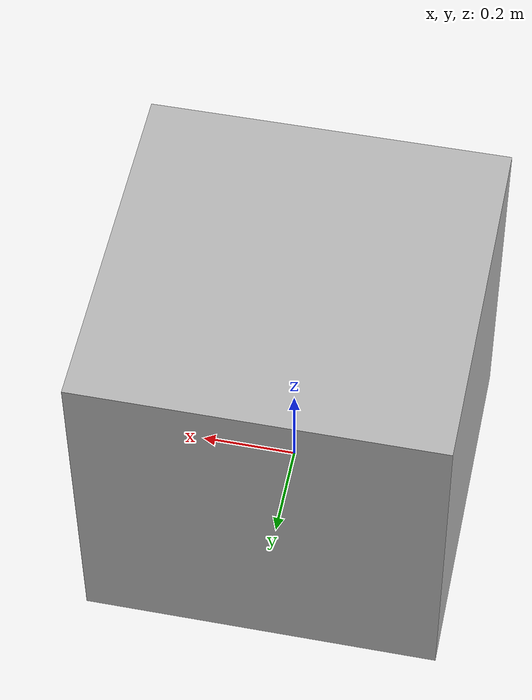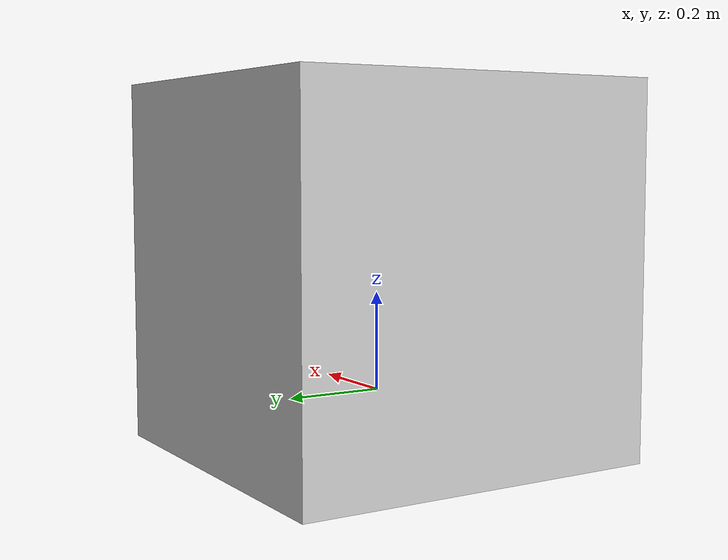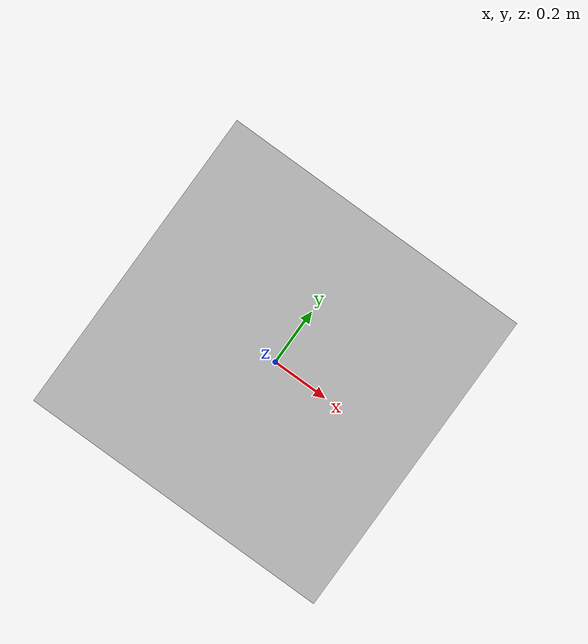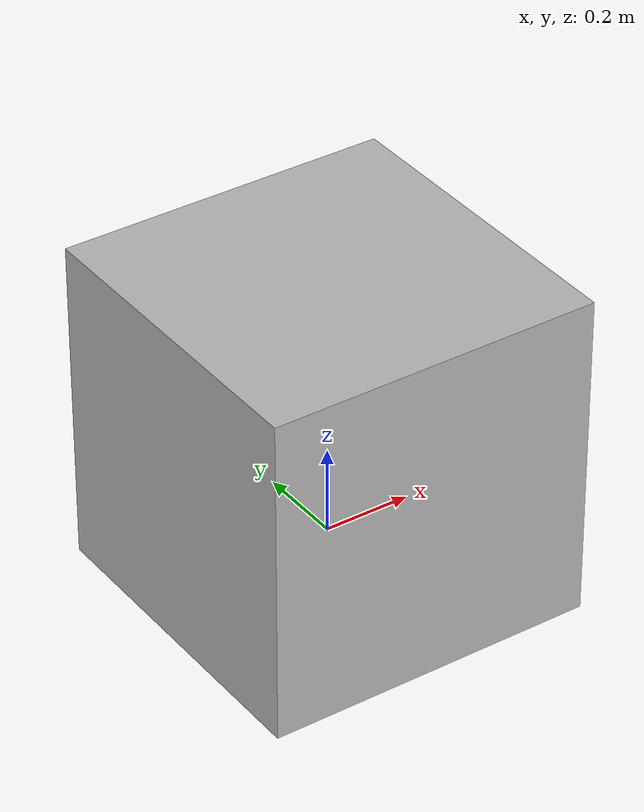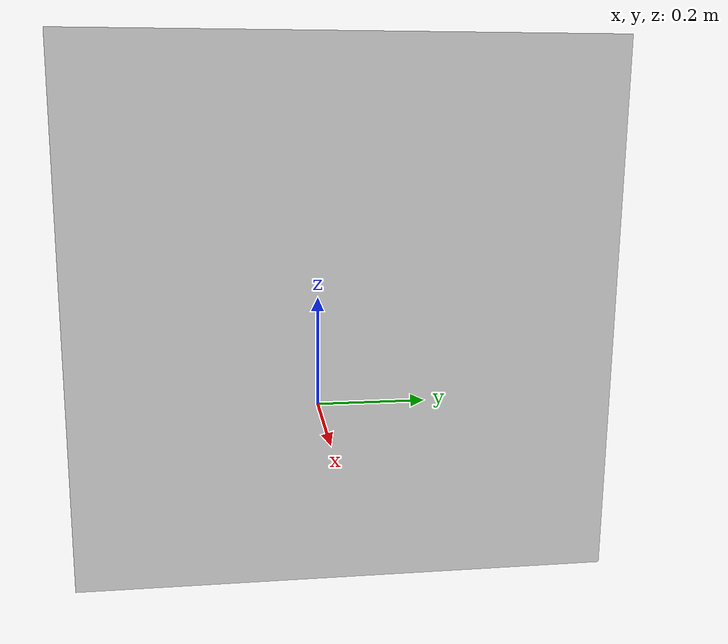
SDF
<?xml version="1.0"?>
<sdf version="1.4">
    <model name="moving_box">
        <link name="link_1">
            <pose>0 0 0.25 0 0 0</pose>
            <gravity>true</gravity>
            <inertial>
                <pose>0 0 0 0 0 0</pose>
                <inertia>
                    <ixx>0.234</ixx>
                    <ixy>0</ixy>
                    <ixz>0</ixz>
                    <iyy>0.234</iyy>
                    <iyz>0</iyz>
                    <izz>0.234</izz>
                </inertia>
                <mass>2</mass>
            </inertial>
            <visual name="visual">
                <geometry>
                    <box>
                        <size>0.75 0.75 0.75</size>
                    </box>
                </geometry>
            </visual>
            <collision name="box_collision">
                <geometry>
                    <box>
                        <size>0.75 0.75 0.75</size>
                    </box>
                </geometry>
                <surface>
                    <friction>
                        <ode>
                            <mu>0.2</mu>
                            <mu2>0.2</mu2>
                        </ode>
                    </friction>
                </surface>
            </collision>
        </link>
        <plugin name="position_2d" filename="libposition_2d_plugin.so">
            <linkName>link_1</linkName>
            <kP_pos>50</kP_pos>
            <kI_pos>0.0</kI_pos>
            <kD_pos>0.0</kD_pos>
            <max_vel>0.5</max_vel>
            <kP_rot>40</kP_rot>
            <kI_rot>0.0</kI_rot>
            <kD_rot>0.0</kD_rot>
            <max_torque>3.0</max_torque>
            <kP_vel>100.0</kP_vel>
            <kI_vel>0.0</kI_vel>
            <kD_vel>0.0</kD_vel>
            <max_force>5.0</max_force>
        </plugin>
    </model>
</sdf>
